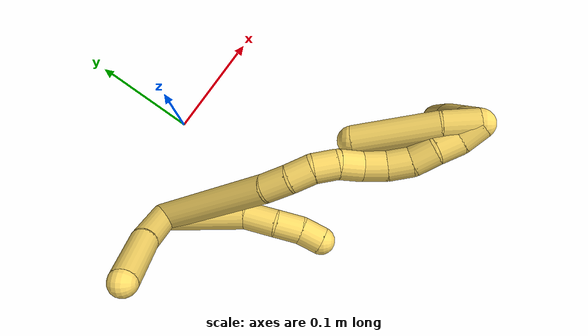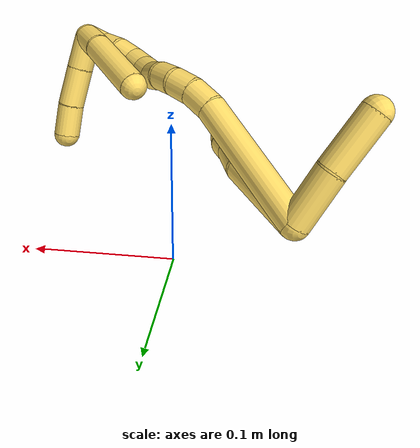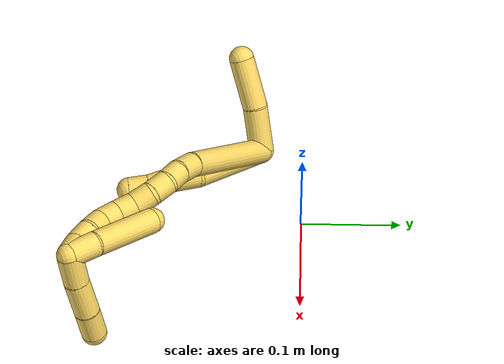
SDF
<sdf version="1.7">
 <world name="default">
  <model name="photoneo_s_sensor">
   <static>1</static>
   <pose>0 0 2 1.57079 1.57079 3.14159</pose>
   <link name="link">
    <inertial><mass>0.1</mass></inertial>
    <sensor name="sensor" type="depth">
     <update_rate>30</update_rate>
     <camera>
      <horizontal_fov>1.22</horizontal_fov>
      <image><width>1920</width><height>1200</height><format>B8G8R8</format></image>
      <clip><near>0.1</near><far>4</far></clip>
      <depth_camera><output>points</output></depth_camera>
     </camera>
     <plugin name="camera_plugin" filename="libgazebo_ros_depth_camera.so">
      <baseline>0.2</baseline>
      <alwaysOn>1</alwaysOn>
      <updateRate>0.0</updateRate>
      <cameraName>camera_ir</cameraName>
      <imageTopicName>/camera/color/image_raw</imageTopicName>
      <cameraInfoTopicName>/camera/color/camera_info</cameraInfoTopicName>
      <depthImageTopicName>/camera/depth/image_raw</depthImageTopicName>
      <depthImageCameraInfoTopicName>/camera/depth/camera_info</depthImageCameraInfoTopicName>
      <pointCloudTopicName>/camera/depth/points</pointCloudTopicName>
      <frameName>fr_optical</frameName>
      <pointCloudCutoff>0.1</pointCloudCutoff>
      <pointCloudCutoffMax>2.0</pointCloudCutoffMax>
      <distortionK1>0</distortionK1>
      <distortionK2>0</distortionK2>
      <distortionK3>0</distortionK3>
      <distortionT1>0</distortionT1>
      <distortionT2>0</distortionT2>
      <CxPrime>0</CxPrime>
      <Cx>0</Cx>
      <Cy>0</Cy>
      <focalLength>0</focalLength>
      <hackBaseline>0</hackBaseline>
     </plugin>
    </sensor>
   </link>
  </model>
  <model name="bin">
   <static>1</static>
   <link name="bottom">
    <collision name="collision-bottom">
     <pose>0 0 -0.01 0 -0 0</pose>
     <geometry><box><size>0.8 0.6 0.02</size></box></geometry>
     <surface>
      <friction><ode><mu>100</mu><mu2>100</mu2></ode></friction>
      <contact><collide_bitmask>65535</collide_bitmask></contact>
     </surface>
    </collision>
   </link>
   <link name="west_wall">
    <collision name="collision-west_wall">
     <pose>-0.41 0 0.1 0 -0 0</pose>
     <geometry><box><size>0.02 0.6 0.2</size></box></geometry>
     <surface>
      <friction><ode><mu>100</mu><mu2>100</mu2></ode></friction>
      <contact><collide_bitmask>65535</collide_bitmask></contact>
     </surface>
    </collision>
   </link>
   <link name="east_wall">
    <collision name="collision-east_wall">
     <pose>0.41 0 0.1 0 -0 0</pose>
     <geometry><box><size>0.02 0.6 0.2</size></box></geometry>
     <surface>
      <friction><ode><mu>100</mu><mu2>100</mu2></ode></friction>
      <contact><collide_bitmask>65535</collide_bitmask></contact>
     </surface>
    </collision>
   </link>
   <link name="south_wall">
    <collision name="collision-south_wall">
     <pose>0 -0.31 0.1 0 -0 0</pose>
     <geometry><box><size>0.8 0.02 0.2</size></box></geometry>
     <surface>
      <friction><ode><mu>100</mu><mu2>100</mu2></ode></friction>
      <contact><collide_bitmask>65535</collide_bitmask></contact>
     </surface>
    </collision>
   </link>
   <link name="north_wall">
    <collision name="collision-north_wall">
     <pose>0 0.31 0.1 0 -0 0</pose>
     <geometry><box><size>0.8 0.02 0.2</size></box></geometry>
     <surface>
      <friction><ode><mu>100</mu><mu2>100</mu2></ode></friction>
      <contact><collide_bitmask>65535</collide_bitmask></contact>
     </surface>
    </collision>
   </link>
  </model>
  <model name="5">
   <static>0</static>
   <link name="5">
    <collision name="collision-cylinder-e_1_2_8">
     <pose>0.001968 -0.001836 0.039155 0.046865 0.050165 0.001176</pose>
     <geometry><cylinder><radius>0.0125</radius><length>0.078495</length></cylinder></geometry>
     <surface>
      <friction><ode><mu>1.16</mu><mu2>1.16</mu2><slip1>0</slip1><slip2>0</slip2></ode></friction>
      <contact><ode><kp>1e+06</kp><kd>1</kd><max_vel>0</max_vel><min_depth>0.001</min_depth></ode></contact>
     </surface>
    </collision>
    <visual name="visual-cylinder-e_1_2_8">
     <pose>0.001968 -0.001836 0.039155 0.046865 0.050165 0.001176</pose>
     <geometry><cylinder><radius>0.0125</radius><length>0.078495</length></cylinder></geometry>
     <material><ambient>1 0.858824 0.4 1</ambient></material>
    </visual>
    <collision name="collision-cylinder-e_2_8_9">
     <pose>0.001041 -0.00269 0.091989 -0.071714 -0.208021 0.007489</pose>
     <geometry><cylinder><radius>0.0125</radius><length>0.028033</length></cylinder></geometry>
     <surface>
      <friction><ode><mu>1.16</mu><mu2>1.16</mu2><slip1>0</slip1><slip2>0</slip2></ode></friction>
      <contact><ode><kp>1e+06</kp><kd>1</kd><max_vel>0</max_vel><min_depth>0.001</min_depth></ode></contact>
     </surface>
    </collision>
    <visual name="visual-cylinder-e_2_8_9">
     <pose>0.001041 -0.00269 0.091989 -0.071714 -0.208021 0.007489</pose>
     <geometry><cylinder><radius>0.0125</radius><length>0.028033</length></cylinder></geometry>
     <material><ambient>1 0.858824 0.4 1</ambient></material>
    </visual>
    <collision name="collision-cylinder-e_3_9_10">
     <pose>-0.005547 -0.002788 0.116708 0.097568 -0.32143 -0.015829</pose>
     <geometry><cylinder><radius>0.0125</radius><length>0.023382</length></cylinder></geometry>
     <surface>
      <friction><ode><mu>1.16</mu><mu2>1.16</mu2><slip1>0</slip1><slip2>0</slip2></ode></friction>
      <contact><ode><kp>1e+06</kp><kd>1</kd><max_vel>0</max_vel><min_depth>0.001</min_depth></ode></contact>
     </surface>
    </collision>
    <visual name="visual-cylinder-e_3_9_10">
     <pose>-0.005547 -0.002788 0.116708 0.097568 -0.32143 -0.015829</pose>
     <geometry><cylinder><radius>0.0125</radius><length>0.023382</length></cylinder></geometry>
     <material><ambient>1 0.858824 0.4 1</ambient></material>
    </visual>
    <collision name="collision-cylinder-e_4_10_6">
     <pose>-0.013868 -0.003385 0.13665 -0.054215 -0.478712 0.013233</pose>
     <geometry><cylinder><radius>0.0125</radius><length>0.02009</length></cylinder></geometry>
     <surface>
      <friction><ode><mu>1.16</mu><mu2>1.16</mu2><slip1>0</slip1><slip2>0</slip2></ode></friction>
      <contact><ode><kp>1e+06</kp><kd>1</kd><max_vel>0</max_vel><min_depth>0.001</min_depth></ode></contact>
     </surface>
    </collision>
    <visual name="visual-cylinder-e_4_10_6">
     <pose>-0.013868 -0.003385 0.13665 -0.054215 -0.478712 0.013233</pose>
     <geometry><cylinder><radius>0.0125</radius><length>0.02009</length></cylinder></geometry>
     <material><ambient>1 0.858824 0.4 1</ambient></material>
    </visual>
    <collision name="collision-cylinder-e_1_2_11">
     <pose>0.003389 0.023644 0.000895 -1.53297 0.142258 -0.136993</pose>
     <geometry><cylinder><radius>0.0125</radius><length>0.047805</length></cylinder></geometry>
     <surface>
      <friction><ode><mu>1.16</mu><mu2>1.16</mu2><slip1>0</slip1><slip2>0</slip2></ode></friction>
      <contact><ode><kp>1e+06</kp><kd>1</kd><max_vel>0</max_vel><min_depth>0.001</min_depth></ode></contact>
     </surface>
    </collision>
    <visual name="visual-cylinder-e_1_2_11">
     <pose>0.003389 0.023644 0.000895 -1.53297 0.142258 -0.136993</pose>
     <geometry><cylinder><radius>0.0125</radius><length>0.047805</length></cylinder></geometry>
     <material><ambient>1 0.858824 0.4 1</ambient></material>
    </visual>
    <collision name="collision-cylinder-e_2_11_5">
     <pose>0.006852 0.073246 0.004488 -1.46722 0.002858 -0.002576</pose>
     <geometry><cylinder><radius>0.0125</radius><length>0.052195</length></cylinder></geometry>
     <surface>
      <friction><ode><mu>1.16</mu><mu2>1.16</mu2><slip1>0</slip1><slip2>0</slip2></ode></friction>
      <contact><ode><kp>1e+06</kp><kd>1</kd><max_vel>0</max_vel><min_depth>0.001</min_depth></ode></contact>
     </surface>
    </collision>
    <visual name="visual-cylinder-e_2_11_5">
     <pose>0.006852 0.073246 0.004488 -1.46722 0.002858 -0.002576</pose>
     <geometry><cylinder><radius>0.0125</radius><length>0.052195</length></cylinder></geometry>
     <material><ambient>1 0.858824 0.4 1</ambient></material>
    </visual>
    <collision name="collision-cylinder-e_1_2_12">
     <pose>0.023489 0.009771 0.052199 -0.18505 0.416435 -0.039204</pose>
     <geometry><cylinder><radius>0.0125</radius><length>0.116136</length></cylinder></geometry>
     <surface>
      <friction><ode><mu>1.16</mu><mu2>1.16</mu2><slip1>0</slip1><slip2>0</slip2></ode></friction>
      <contact><ode><kp>1e+06</kp><kd>1</kd><max_vel>0</max_vel><min_depth>0.001</min_depth></ode></contact>
     </surface>
    </collision>
    <visual name="visual-cylinder-e_1_2_12">
     <pose>0.023489 0.009771 0.052199 -0.18505 0.416435 -0.039204</pose>
     <geometry><cylinder><radius>0.0125</radius><length>0.116136</length></cylinder></geometry>
     <material><ambient>1 0.858824 0.4 1</ambient></material>
    </visual>
    <collision name="collision-cylinder-e_2_12_13">
     <pose>0.051697 0.019284 0.11486 0.024703 0.423629 0.005312</pose>
     <geometry><cylinder><radius>0.0125</radius><length>0.02296</length></cylinder></geometry>
     <surface>
      <friction><ode><mu>1.16</mu><mu2>1.16</mu2><slip1>0</slip1><slip2>0</slip2></ode></friction>
      <contact><ode><kp>1e+06</kp><kd>1</kd><max_vel>0</max_vel><min_depth>0.001</min_depth></ode></contact>
     </surface>
    </collision>
    <visual name="visual-cylinder-e_2_12_13">
     <pose>0.051697 0.019284 0.11486 0.024703 0.423629 0.005312</pose>
     <geometry><cylinder><radius>0.0125</radius><length>0.02296</length></cylinder></geometry>
     <material><ambient>1 0.858824 0.4 1</ambient></material>
    </visual>
    <collision name="collision-cylinder-e_3_13_14">
     <pose>0.060154 0.016747 0.134476 0.243919 0.377298 0.046792</pose>
     <geometry><cylinder><radius>0.0125</radius><length>0.020295</length></cylinder></geometry>
     <surface>
      <friction><ode><mu>1.16</mu><mu2>1.16</mu2><slip1>0</slip1><slip2>0</slip2></ode></friction>
      <contact><ode><kp>1e+06</kp><kd>1</kd><max_vel>0</max_vel><min_depth>0.001</min_depth></ode></contact>
     </surface>
    </collision>
    <visual name="visual-cylinder-e_3_13_14">
     <pose>0.060154 0.016747 0.134476 0.243919 0.377298 0.046792</pose>
     <geometry><cylinder><radius>0.0125</radius><length>0.020295</length></cylinder></geometry>
     <material><ambient>1 0.858824 0.4 1</ambient></material>
    </visual>
    <collision name="collision-cylinder-e_4_14_15">
     <pose>0.064813 0.011657 0.153294 0.283193 0.091239 0.013015</pose>
     <geometry><cylinder><radius>0.0125</radius><length>0.020213</length></cylinder></geometry>
     <surface>
      <friction><ode><mu>1.16</mu><mu2>1.16</mu2><slip1>0</slip1><slip2>0</slip2></ode></friction>
      <contact><ode><kp>1e+06</kp><kd>1</kd><max_vel>0</max_vel><min_depth>0.001</min_depth></ode></contact>
     </surface>
    </collision>
    <visual name="visual-cylinder-e_4_14_15">
     <pose>0.064813 0.011657 0.153294 0.283193 0.091239 0.013015</pose>
     <geometry><cylinder><radius>0.0125</radius><length>0.020213</length></cylinder></geometry>
     <material><ambient>1 0.858824 0.4 1</ambient></material>
    </visual>
    <collision name="collision-cylinder-e_5_15_16">
     <pose>0.063243 0.005425 0.172235 0.353102 -0.246792 -0.044247</pose>
     <geometry><cylinder><radius>0.0125</radius><length>0.020392</length></cylinder></geometry>
     <surface>
      <friction><ode><mu>1.16</mu><mu2>1.16</mu2><slip1>0</slip1><slip2>0</slip2></ode></friction>
      <contact><ode><kp>1e+06</kp><kd>1</kd><max_vel>0</max_vel><min_depth>0.001</min_depth></ode></contact>
     </surface>
    </collision>
    <visual name="visual-cylinder-e_5_15_16">
     <pose>0.063243 0.005425 0.172235 0.353102 -0.246792 -0.044247</pose>
     <geometry><cylinder><radius>0.0125</radius><length>0.020392</length></cylinder></geometry>
     <material><ambient>1 0.858824 0.4 1</ambient></material>
    </visual>
    <collision name="collision-cylinder-e_6_16_17">
     <pose>0.060419 0.00058 0.191404 0.143213 -0.033293 -0.002388</pose>
     <geometry><cylinder><radius>0.0125</radius><length>0.02</length></cylinder></geometry>
     <surface>
      <friction><ode><mu>1.16</mu><mu2>1.16</mu2><slip1>0</slip1><slip2>0</slip2></ode></friction>
      <contact><ode><kp>1e+06</kp><kd>1</kd><max_vel>0</max_vel><min_depth>0.001</min_depth></ode></contact>
     </surface>
    </collision>
    <visual name="visual-cylinder-e_6_16_17">
     <pose>0.060419 0.00058 0.191404 0.143213 -0.033293 -0.002388</pose>
     <geometry><cylinder><radius>0.0125</radius><length>0.02</length></cylinder></geometry>
     <material><ambient>1 0.858824 0.4 1</ambient></material>
    </visual>
    <collision name="collision-cylinder-e_7_17_18">
     <pose>0.061837 -0.002041 0.21107 0.121617 0.175886 0.010736</pose>
     <geometry><cylinder><radius>0.0125</radius><length>0.020002</length></cylinder></geometry>
     <surface>
      <friction><ode><mu>1.16</mu><mu2>1.16</mu2><slip1>0</slip1><slip2>0</slip2></ode></friction>
      <contact><ode><kp>1e+06</kp><kd>1</kd><max_vel>0</max_vel><min_depth>0.001</min_depth></ode></contact>
     </surface>
    </collision>
    <visual name="visual-cylinder-e_7_17_18">
     <pose>0.061837 -0.002041 0.21107 0.121617 0.175886 0.010736</pose>
     <geometry><cylinder><radius>0.0125</radius><length>0.020002</length></cylinder></geometry>
     <material><ambient>1 0.858824 0.4 1</ambient></material>
    </visual>
    <collision name="collision-cylinder-e_8_18_19">
     <pose>0.068223 -0.004783 0.229569 0.175436 0.482046 0.043227</pose>
     <geometry><cylinder><radius>0.0125</radius><length>0.020002</length></cylinder></geometry>
     <surface>
      <friction><ode><mu>1.16</mu><mu2>1.16</mu2><slip1>0</slip1><slip2>0</slip2></ode></friction>
      <contact><ode><kp>1e+06</kp><kd>1</kd><max_vel>0</max_vel><min_depth>0.001</min_depth></ode></contact>
     </surface>
    </collision>
    <visual name="visual-cylinder-e_8_18_19">
     <pose>0.068223 -0.004783 0.229569 0.175436 0.482046 0.043227</pose>
     <geometry><cylinder><radius>0.0125</radius><length>0.020002</length></cylinder></geometry>
     <material><ambient>1 0.858824 0.4 1</ambient></material>
    </visual>
    <collision name="collision-cylinder-e_9_19_20">
     <pose>0.075985 -0.009629 0.247201 0.35484 0.317943 0.057478</pose>
     <geometry><cylinder><radius>0.0125</radius><length>0.02</length></cylinder></geometry>
     <surface>
      <friction><ode><mu>1.16</mu><mu2>1.16</mu2><slip1>0</slip1><slip2>0</slip2></ode></friction>
      <contact><ode><kp>1e+06</kp><kd>1</kd><max_vel>0</max_vel><min_depth>0.001</min_depth></ode></contact>
     </surface>
    </collision>
    <visual name="visual-cylinder-e_9_19_20">
     <pose>0.075985 -0.009629 0.247201 0.35484 0.317943 0.057478</pose>
     <geometry><cylinder><radius>0.0125</radius><length>0.02</length></cylinder></geometry>
     <material><ambient>1 0.858824 0.4 1</ambient></material>
    </visual>
    <collision name="collision-cylinder-e_10_20_1">
     <pose>0.085087 -0.015368 0.263747 0.309022 0.640443 0.103214</pose>
     <geometry><cylinder><radius>0.0125</radius><length>0.02</length></cylinder></geometry>
     <surface>
      <friction><ode><mu>1.16</mu><mu2>1.16</mu2><slip1>0</slip1><slip2>0</slip2></ode></friction>
      <contact><ode><kp>1e+06</kp><kd>1</kd><max_vel>0</max_vel><min_depth>0.001</min_depth></ode></contact>
     </surface>
    </collision>
    <visual name="visual-cylinder-e_10_20_1">
     <pose>0.085087 -0.015368 0.263747 0.309022 0.640443 0.103214</pose>
     <geometry><cylinder><radius>0.0125</radius><length>0.02</length></cylinder></geometry>
     <material><ambient>1 0.858824 0.4 1</ambient></material>
    </visual>
    <collision name="collision-cylinder-e_1_1_21">
     <pose>0.090419 -0.016537 0.256937 -3.05395 -0.04433 0.936151</pose>
     <geometry><cylinder><radius>0.0125</radius><length>0.029038</length></cylinder></geometry>
     <surface>
      <friction><ode><mu>1.16</mu><mu2>1.16</mu2><slip1>0</slip1><slip2>0</slip2></ode></friction>
      <contact><ode><kp>1e+06</kp><kd>1</kd><max_vel>0</max_vel><min_depth>0.001</min_depth></ode></contact>
     </surface>
    </collision>
    <visual name="visual-cylinder-e_1_1_21">
     <pose>0.090419 -0.016537 0.256937 -3.05395 -0.04433 0.936151</pose>
     <geometry><cylinder><radius>0.0125</radius><length>0.029038</length></cylinder></geometry>
     <material><ambient>1 0.858824 0.4 1</ambient></material>
    </visual>
    <collision name="collision-cylinder-e_2_21_4">
     <pose>0.082881 -0.014707 0.207688 -3.12548 -0.195562 2.97771</pose>
     <geometry><cylinder><radius>0.0125</radius><length>0.070962</length></cylinder></geometry>
     <surface>
      <friction><ode><mu>1.16</mu><mu2>1.16</mu2><slip1>0</slip1><slip2>0</slip2></ode></friction>
      <contact><ode><kp>1e+06</kp><kd>1</kd><max_vel>0</max_vel><min_depth>0.001</min_depth></ode></contact>
     </surface>
    </collision>
    <visual name="visual-cylinder-e_2_21_4">
     <pose>0.082881 -0.014707 0.207688 -3.12548 -0.195562 2.97771</pose>
     <geometry><cylinder><radius>0.0125</radius><length>0.070962</length></cylinder></geometry>
     <material><ambient>1 0.858824 0.4 1</ambient></material>
    </visual>
    <collision name="collision-cylinder-e_1_1_22">
     <pose>0.085926 -0.032605 0.268291 1.77694 -0.327531 -0.401276</pose>
     <geometry><cylinder><radius>0.0125</radius><length>0.031934</length></cylinder></geometry>
     <surface>
      <friction><ode><mu>1.16</mu><mu2>1.16</mu2><slip1>0</slip1><slip2>0</slip2></ode></friction>
      <contact><ode><kp>1e+06</kp><kd>1</kd><max_vel>0</max_vel><min_depth>0.001</min_depth></ode></contact>
     </surface>
    </collision>
    <visual name="visual-cylinder-e_1_1_22">
     <pose>0.085926 -0.032605 0.268291 1.77694 -0.327531 -0.401276</pose>
     <geometry><cylinder><radius>0.0125</radius><length>0.031934</length></cylinder></geometry>
     <material><ambient>1 0.858824 0.4 1</ambient></material>
    </visual>
    <collision name="collision-cylinder-e_2_22_23">
     <pose>0.074974 -0.064677 0.26035 1.84432 -0.313467 -0.411047</pose>
     <geometry><cylinder><radius>0.0125</radius><length>0.03772</length></cylinder></geometry>
     <surface>
      <friction><ode><mu>1.16</mu><mu2>1.16</mu2><slip1>0</slip1><slip2>0</slip2></ode></friction>
      <contact><ode><kp>1e+06</kp><kd>1</kd><max_vel>0</max_vel><min_depth>0.001</min_depth></ode></contact>
     </surface>
    </collision>
    <visual name="visual-cylinder-e_2_22_23">
     <pose>0.074974 -0.064677 0.26035 1.84432 -0.313467 -0.411047</pose>
     <geometry><cylinder><radius>0.0125</radius><length>0.03772</length></cylinder></geometry>
     <material><ambient>1 0.858824 0.4 1</ambient></material>
    </visual>
    <collision name="collision-cylinder-e_3_23_3">
     <pose>0.063099 -0.095215 0.25131 1.87709 -0.410752 -0.554094</pose>
     <geometry><cylinder><radius>0.0125</radius><length>0.030346</length></cylinder></geometry>
     <surface>
      <friction><ode><mu>1.16</mu><mu2>1.16</mu2><slip1>0</slip1><slip2>0</slip2></ode></friction>
      <contact><ode><kp>1e+06</kp><kd>1</kd><max_vel>0</max_vel><min_depth>0.001</min_depth></ode></contact>
     </surface>
    </collision>
    <visual name="visual-cylinder-e_3_23_3">
     <pose>0.063099 -0.095215 0.25131 1.87709 -0.410752 -0.554094</pose>
     <geometry><cylinder><radius>0.0125</radius><length>0.030346</length></cylinder></geometry>
     <material><ambient>1 0.858824 0.4 1</ambient></material>
    </visual>
    <collision name="collision-sphere-3">
     <pose>0.057041 -0.108478 0.247115 0 -0 0</pose>
     <geometry><sphere><radius>0.0125</radius></sphere></geometry>
     <surface>
      <friction><ode><mu>1.16</mu><mu2>1.16</mu2><slip1>0</slip1><slip2>0</slip2></ode></friction>
      <contact><ode><kp>1e+06</kp><kd>1</kd><max_vel>0</max_vel><min_depth>0.001</min_depth></ode></contact>
     </surface>
    </collision>
    <visual name="visual-sphere-3">
     <pose>0.057041 -0.108478 0.247115 0 -0 0</pose>
     <geometry><sphere><radius>0.0125</radius></sphere></geometry>
     <material><ambient>1 0.858824 0.4 1</ambient></material>
    </visual>
    <collision name="collision-sphere-23">
     <pose>0.069158 -0.081951 0.255504 0 -0 0</pose>
     <geometry><sphere><radius>0.0125</radius></sphere></geometry>
     <surface>
      <friction><ode><mu>1.16</mu><mu2>1.16</mu2><slip1>0</slip1><slip2>0</slip2></ode></friction>
      <contact><ode><kp>1e+06</kp><kd>1</kd><max_vel>0</max_vel><min_depth>0.001</min_depth></ode></contact>
     </surface>
    </collision>
    <visual name="visual-sphere-23">
     <pose>0.069158 -0.081951 0.255504 0 -0 0</pose>
     <geometry><sphere><radius>0.0125</radius></sphere></geometry>
     <material><ambient>1 0.858824 0.4 1</ambient></material>
    </visual>
    <collision name="collision-sphere-22">
     <pose>0.080789 -0.047403 0.265197 0 -0 0</pose>
     <geometry><sphere><radius>0.0125</radius></sphere></geometry>
     <surface>
      <friction><ode><mu>1.16</mu><mu2>1.16</mu2><slip1>0</slip1><slip2>0</slip2></ode></friction>
      <contact><ode><kp>1e+06</kp><kd>1</kd><max_vel>0</max_vel><min_depth>0.001</min_depth></ode></contact>
     </surface>
    </collision>
    <visual name="visual-sphere-22">
     <pose>0.080789 -0.047403 0.265197 0 -0 0</pose>
     <geometry><sphere><radius>0.0125</radius></sphere></geometry>
     <material><ambient>1 0.858824 0.4 1</ambient></material>
    </visual>
    <collision name="collision-sphere-4">
     <pose>0.075987 -0.014146 0.172887 0 -0 0</pose>
     <geometry><sphere><radius>0.0125</radius></sphere></geometry>
     <surface>
      <friction><ode><mu>1.16</mu><mu2>1.16</mu2><slip1>0</slip1><slip2>0</slip2></ode></friction>
      <contact><ode><kp>1e+06</kp><kd>1</kd><max_vel>0</max_vel><min_depth>0.001</min_depth></ode></contact>
     </surface>
    </collision>
    <visual name="visual-sphere-4">
     <pose>0.075987 -0.014146 0.172887 0 -0 0</pose>
     <geometry><sphere><radius>0.0125</radius></sphere></geometry>
     <material><ambient>1 0.858824 0.4 1</ambient></material>
    </visual>
    <collision name="collision-sphere-21">
     <pose>0.089776 -0.015268 0.242488 0 -0 0</pose>
     <geometry><sphere><radius>0.0125</radius></sphere></geometry>
     <surface>
      <friction><ode><mu>1.16</mu><mu2>1.16</mu2><slip1>0</slip1><slip2>0</slip2></ode></friction>
      <contact><ode><kp>1e+06</kp><kd>1</kd><max_vel>0</max_vel><min_depth>0.001</min_depth></ode></contact>
     </surface>
    </collision>
    <visual name="visual-sphere-21">
     <pose>0.089776 -0.015268 0.242488 0 -0 0</pose>
     <geometry><sphere><radius>0.0125</radius></sphere></geometry>
     <material><ambient>1 0.858824 0.4 1</ambient></material>
    </visual>
    <collision name="collision-sphere-1">
     <pose>0.091063 -0.017807 0.271386 0 -0 0</pose>
     <geometry><sphere><radius>0.0125</radius></sphere></geometry>
     <surface>
      <friction><ode><mu>1.16</mu><mu2>1.16</mu2><slip1>0</slip1><slip2>0</slip2></ode></friction>
      <contact><ode><kp>1e+06</kp><kd>1</kd><max_vel>0</max_vel><min_depth>0.001</min_depth></ode></contact>
     </surface>
    </collision>
    <visual name="visual-sphere-1">
     <pose>0.091063 -0.017807 0.271386 0 -0 0</pose>
     <geometry><sphere><radius>0.0125</radius></sphere></geometry>
     <material><ambient>1 0.858824 0.4 1</ambient></material>
    </visual>
    <collision name="collision-sphere-11">
     <pose>0.006778 0.047288 0.00179 0 -0 0</pose>
     <geometry><sphere><radius>0.0125</radius></sphere></geometry>
     <surface>
      <friction><ode><mu>1.16</mu><mu2>1.16</mu2><slip1>0</slip1><slip2>0</slip2></ode></friction>
      <contact><ode><kp>1e+06</kp><kd>1</kd><max_vel>0</max_vel><min_depth>0.001</min_depth></ode></contact>
     </surface>
    </collision>
    <visual name="visual-sphere-11">
     <pose>0.006778 0.047288 0.00179 0 -0 0</pose>
     <geometry><sphere><radius>0.0125</radius></sphere></geometry>
     <material><ambient>1 0.858824 0.4 1</ambient></material>
    </visual>
    <collision name="collision-sphere-6">
     <pose>-0.018495 -0.002902 0.145553 0 -0 0</pose>
     <geometry><sphere><radius>0.0125</radius></sphere></geometry>
     <surface>
      <friction><ode><mu>1.16</mu><mu2>1.16</mu2><slip1>0</slip1><slip2>0</slip2></ode></friction>
      <contact><ode><kp>1e+06</kp><kd>1</kd><max_vel>0</max_vel><min_depth>0.001</min_depth></ode></contact>
     </surface>
    </collision>
    <visual name="visual-sphere-6">
     <pose>-0.018495 -0.002902 0.145553 0 -0 0</pose>
     <geometry><sphere><radius>0.0125</radius></sphere></geometry>
     <material><ambient>1 0.858824 0.4 1</ambient></material>
    </visual>
    <collision name="collision-sphere-10">
     <pose>-0.009241 -0.003868 0.127748 0 -0 0</pose>
     <geometry><sphere><radius>0.0125</radius></sphere></geometry>
     <surface>
      <friction><ode><mu>1.16</mu><mu2>1.16</mu2><slip1>0</slip1><slip2>0</slip2></ode></friction>
      <contact><ode><kp>1e+06</kp><kd>1</kd><max_vel>0</max_vel><min_depth>0.001</min_depth></ode></contact>
     </surface>
    </collision>
    <visual name="visual-sphere-10">
     <pose>-0.009241 -0.003868 0.127748 0 -0 0</pose>
     <geometry><sphere><radius>0.0125</radius></sphere></geometry>
     <material><ambient>1 0.858824 0.4 1</ambient></material>
    </visual>
    <collision name="collision-sphere-9">
     <pose>-0.001854 -0.001707 0.105668 0 -0 0</pose>
     <geometry><sphere><radius>0.0125</radius></sphere></geometry>
     <surface>
      <friction><ode><mu>1.16</mu><mu2>1.16</mu2><slip1>0</slip1><slip2>0</slip2></ode></friction>
      <contact><ode><kp>1e+06</kp><kd>1</kd><max_vel>0</max_vel><min_depth>0.001</min_depth></ode></contact>
     </surface>
    </collision>
    <visual name="visual-sphere-9">
     <pose>-0.001854 -0.001707 0.105668 0 -0 0</pose>
     <geometry><sphere><radius>0.0125</radius></sphere></geometry>
     <material><ambient>1 0.858824 0.4 1</ambient></material>
    </visual>
    <collision name="collision-sphere-2">
     <geometry><sphere><radius>0.0125</radius></sphere></geometry>
     <surface>
      <friction><ode><mu>1.16</mu><mu2>1.16</mu2><slip1>0</slip1><slip2>0</slip2></ode></friction>
      <contact><ode><kp>1e+06</kp><kd>1</kd><max_vel>0</max_vel><min_depth>0.001</min_depth></ode></contact>
     </surface>
    </collision>
    <visual name="visual-sphere-2">
     <geometry><sphere><radius>0.0125</radius></sphere></geometry>
     <material><ambient>1 0.858824 0.4 1</ambient></material>
    </visual>
    <collision name="collision-sphere-19">
     <pose>0.072859 -0.006329 0.238294 0 -0 0</pose>
     <geometry><sphere><radius>0.0125</radius></sphere></geometry>
     <surface>
      <friction><ode><mu>1.16</mu><mu2>1.16</mu2><slip1>0</slip1><slip2>0</slip2></ode></friction>
      <contact><ode><kp>1e+06</kp><kd>1</kd><max_vel>0</max_vel><min_depth>0.001</min_depth></ode></contact>
     </surface>
    </collision>
    <visual name="visual-sphere-19">
     <pose>0.072859 -0.006329 0.238294 0 -0 0</pose>
     <geometry><sphere><radius>0.0125</radius></sphere></geometry>
     <material><ambient>1 0.858824 0.4 1</ambient></material>
    </visual>
    <collision name="collision-sphere-8">
     <pose>0.003936 -0.003673 0.07831 0 -0 0</pose>
     <geometry><sphere><radius>0.0125</radius></sphere></geometry>
     <surface>
      <friction><ode><mu>1.16</mu><mu2>1.16</mu2><slip1>0</slip1><slip2>0</slip2></ode></friction>
      <contact><ode><kp>1e+06</kp><kd>1</kd><max_vel>0</max_vel><min_depth>0.001</min_depth></ode></contact>
     </surface>
    </collision>
    <visual name="visual-sphere-8">
     <pose>0.003936 -0.003673 0.07831 0 -0 0</pose>
     <geometry><sphere><radius>0.0125</radius></sphere></geometry>
     <material><ambient>1 0.858824 0.4 1</ambient></material>
    </visual>
    <collision name="collision-sphere-5">
     <pose>0.006927 0.099203 0.007186 0 -0 0</pose>
     <geometry><sphere><radius>0.0125</radius></sphere></geometry>
     <surface>
      <friction><ode><mu>1.16</mu><mu2>1.16</mu2><slip1>0</slip1><slip2>0</slip2></ode></friction>
      <contact><ode><kp>1e+06</kp><kd>1</kd><max_vel>0</max_vel><min_depth>0.001</min_depth></ode></contact>
     </surface>
    </collision>
    <visual name="visual-sphere-5">
     <pose>0.006927 0.099203 0.007186 0 -0 0</pose>
     <geometry><sphere><radius>0.0125</radius></sphere></geometry>
     <material><ambient>1 0.858824 0.4 1</ambient></material>
    </visual>
    <collision name="collision-sphere-12">
     <pose>0.046978 0.019542 0.104398 0 -0 0</pose>
     <geometry><sphere><radius>0.0125</radius></sphere></geometry>
     <surface>
      <friction><ode><mu>1.16</mu><mu2>1.16</mu2><slip1>0</slip1><slip2>0</slip2></ode></friction>
      <contact><ode><kp>1e+06</kp><kd>1</kd><max_vel>0</max_vel><min_depth>0.001</min_depth></ode></contact>
     </surface>
    </collision>
    <visual name="visual-sphere-12">
     <pose>0.046978 0.019542 0.104398 0 -0 0</pose>
     <geometry><sphere><radius>0.0125</radius></sphere></geometry>
     <material><ambient>1 0.858824 0.4 1</ambient></material>
    </visual>
    <collision name="collision-sphere-13">
     <pose>0.056416 0.019025 0.125321 0 -0 0</pose>
     <geometry><sphere><radius>0.0125</radius></sphere></geometry>
     <surface>
      <friction><ode><mu>1.16</mu><mu2>1.16</mu2><slip1>0</slip1><slip2>0</slip2></ode></friction>
      <contact><ode><kp>1e+06</kp><kd>1</kd><max_vel>0</max_vel><min_depth>0.001</min_depth></ode></contact>
     </surface>
    </collision>
    <visual name="visual-sphere-13">
     <pose>0.056416 0.019025 0.125321 0 -0 0</pose>
     <geometry><sphere><radius>0.0125</radius></sphere></geometry>
     <material><ambient>1 0.858824 0.4 1</ambient></material>
    </visual>
    <collision name="collision-sphere-14">
     <pose>0.063892 0.014469 0.14363 0 -0 0</pose>
     <geometry><sphere><radius>0.0125</radius></sphere></geometry>
     <surface>
      <friction><ode><mu>1.16</mu><mu2>1.16</mu2><slip1>0</slip1><slip2>0</slip2></ode></friction>
      <contact><ode><kp>1e+06</kp><kd>1</kd><max_vel>0</max_vel><min_depth>0.001</min_depth></ode></contact>
     </surface>
    </collision>
    <visual name="visual-sphere-14">
     <pose>0.063892 0.014469 0.14363 0 -0 0</pose>
     <geometry><sphere><radius>0.0125</radius></sphere></geometry>
     <material><ambient>1 0.858824 0.4 1</ambient></material>
    </visual>
    <collision name="collision-sphere-15">
     <pose>0.065734 0.008844 0.162958 0 -0 0</pose>
     <geometry><sphere><radius>0.0125</radius></sphere></geometry>
     <surface>
      <friction><ode><mu>1.16</mu><mu2>1.16</mu2><slip1>0</slip1><slip2>0</slip2></ode></friction>
      <contact><ode><kp>1e+06</kp><kd>1</kd><max_vel>0</max_vel><min_depth>0.001</min_depth></ode></contact>
     </surface>
    </collision>
    <visual name="visual-sphere-15">
     <pose>0.065734 0.008844 0.162958 0 -0 0</pose>
     <geometry><sphere><radius>0.0125</radius></sphere></geometry>
     <material><ambient>1 0.858824 0.4 1</ambient></material>
    </visual>
    <collision name="collision-sphere-16">
     <pose>0.060752 0.002006 0.181512 0 -0 0</pose>
     <geometry><sphere><radius>0.0125</radius></sphere></geometry>
     <surface>
      <friction><ode><mu>1.16</mu><mu2>1.16</mu2><slip1>0</slip1><slip2>0</slip2></ode></friction>
      <contact><ode><kp>1e+06</kp><kd>1</kd><max_vel>0</max_vel><min_depth>0.001</min_depth></ode></contact>
     </surface>
    </collision>
    <visual name="visual-sphere-16">
     <pose>0.060752 0.002006 0.181512 0 -0 0</pose>
     <geometry><sphere><radius>0.0125</radius></sphere></geometry>
     <material><ambient>1 0.858824 0.4 1</ambient></material>
    </visual>
    <collision name="collision-sphere-17">
     <pose>0.060087 -0.000847 0.201296 0 -0 0</pose>
     <geometry><sphere><radius>0.0125</radius></sphere></geometry>
     <surface>
      <friction><ode><mu>1.16</mu><mu2>1.16</mu2><slip1>0</slip1><slip2>0</slip2></ode></friction>
      <contact><ode><kp>1e+06</kp><kd>1</kd><max_vel>0</max_vel><min_depth>0.001</min_depth></ode></contact>
     </surface>
    </collision>
    <visual name="visual-sphere-17">
     <pose>0.060087 -0.000847 0.201296 0 -0 0</pose>
     <geometry><sphere><radius>0.0125</radius></sphere></geometry>
     <material><ambient>1 0.858824 0.4 1</ambient></material>
    </visual>
    <collision name="collision-sphere-18">
     <pose>0.063587 -0.003236 0.220844 0 -0 0</pose>
     <geometry><sphere><radius>0.0125</radius></sphere></geometry>
     <surface>
      <friction><ode><mu>1.16</mu><mu2>1.16</mu2><slip1>0</slip1><slip2>0</slip2></ode></friction>
      <contact><ode><kp>1e+06</kp><kd>1</kd><max_vel>0</max_vel><min_depth>0.001</min_depth></ode></contact>
     </surface>
    </collision>
    <visual name="visual-sphere-18">
     <pose>0.063587 -0.003236 0.220844 0 -0 0</pose>
     <geometry><sphere><radius>0.0125</radius></sphere></geometry>
     <material><ambient>1 0.858824 0.4 1</ambient></material>
    </visual>
    <collision name="collision-sphere-20">
     <pose>0.079111 -0.01293 0.256108 0 -0 0</pose>
     <geometry><sphere><radius>0.0125</radius></sphere></geometry>
     <surface>
      <friction><ode><mu>1.16</mu><mu2>1.16</mu2><slip1>0</slip1><slip2>0</slip2></ode></friction>
      <contact><ode><kp>1e+06</kp><kd>1</kd><max_vel>0</max_vel><min_depth>0.001</min_depth></ode></contact>
     </surface>
    </collision>
    <visual name="visual-sphere-20">
     <pose>0.079111 -0.01293 0.256108 0 -0 0</pose>
     <geometry><sphere><radius>0.0125</radius></sphere></geometry>
     <material><ambient>1 0.858824 0.4 1</ambient></material>
    </visual>
    <inertial>
     <pose>0.041407 -0.002206 0.134022 0 -0 0</pose>
     <mass>0.75</mass>
     <inertia>
      <ixx>0.000191</ixx>
      <ixy>0</ixy>
      <ixz>0</ixz>
      <iyy>0.000223</iyy>
      <iyz>0</iyz>
      <izz>-5.7e-05</izz>
     </inertia>
    </inertial>
   </link>
   <pose>-0.083029 -0.040646 0.012069 1.3213 -0.653201 0.698418</pose>
  </model>
 </world>
</sdf>
